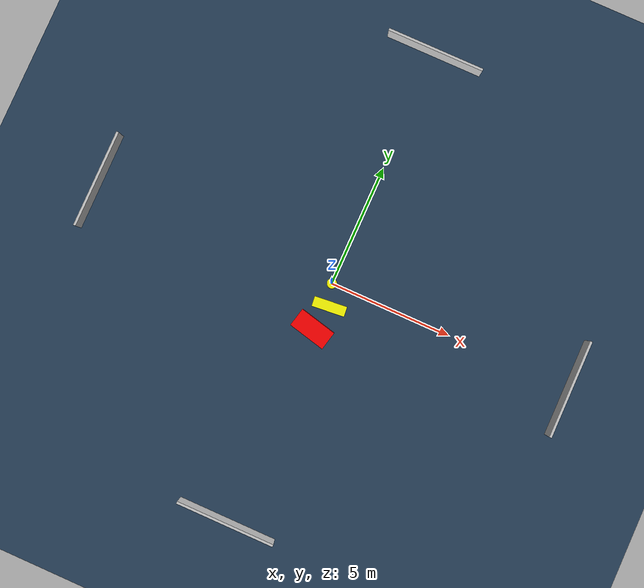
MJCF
<?xml version="1.0" ?>
<mujoco model="generated_environment">
  <option timestep="0.01" integrator="RK4" cone="elliptic"/>
  <default>
    <geom density="1"/>
  </default>
  <asset>
    <texture builtin="gradient" height="3072" name="skybox" rgb1="0.3 0.5 0.7" rgb2="0 0 0" type="skybox" width="512"/>
    <texture builtin="checker" height="300" name="groundplane" rgb1="0.2 0.3 0.4" rgb2="0.1 0.2 0.3" type="2d" width="300"/>
    <material name="groundplane" reflectance="0.2" texrepeat="5 5" texture="groundplane"/>
  </asset>
  <worldbody>
    <light dir="0 0 -1" directional="true" pos="0 0 1.5"/>
    <geom condim="3" friction="0.5 0.005 0.001" material="groundplane" name="floor" pos="0 0 0" size="0 0 0.05" type="plane"/>
    <body name="walls">
      <geom name="wall_1" condim="4" pos="-10.0 0.0 0.3" rgba="0.800000011920929 0.800000011920929 0.800000011920929 1.0" size="0.05 2.0 0.3" type="box"/>
      <geom name="wall_2" condim="4" pos="10.0 0.0 0.3" rgba="0.800000011920929 0.800000011920929 0.800000011920929 1.0" size="0.05 2.0 0.3" type="box"/>
      <geom name="wall_3" condim="4" pos="0.0 -10.0 0.3" rgba="0.800000011920929 0.800000011920929 0.800000011920929 1.0" size="2.0 0.05 0.3" type="box"/>
      <geom name="wall_4" condim="4" pos="0.0 10.0 0.3" rgba="0.800000011920929 0.800000011920929 0.800000011920929 1.0" size="2.0 0.05 0.3" type="box"/>
    </body>
    <body name="robot">
      <joint name="joint_x" type="slide" pos="0 0 0" axis="1 0 0"/>
      <joint name="joint_y" type="slide" pos="0 0 0" axis="0 1 0"/>
      <geom name="robot" type="cylinder" pos="0.0 0.0 0.2" size="0.2 0.2 0.0" mass="5.0" friction="1.0 0.005 0.0001" condim="4" rgba="1.0 1.0 0.0 1.0"/>
    </body>
    <body name="obstacle_1_movable">
      <geom name="obstacle_1_movable" condim="4" pos="0.2733047730778751 -0.8574211657247333 0.3" euler="0 0 95.19604279645048" friction="0.0 0.005 0.001" rgba="1.0 1.0 0.0 1.0" size="0.20304910363079767 0.6590433556687227 0.3" type="box" mass="0.1"/>
      <joint type="free"/>
    </body>
    <body name="obstacle_2_static">
      <geom name="obstacle_2_static" condim="4" pos="0.02543292327667424 -1.9162285379930368 0.3" euler="0 0 346.66533294532655" friction="0.0 0.005 0.001" rgba="1.0 0.0 0.0 1.0" size="0.7657883855991361 0.38247273105915575 0.3" type="box"/>
    </body>
  </worldbody>
  <actuator>
    <motor name="actuator_x" joint="joint_x" gear="1" ctrlrange="-1 1"/>
    <motor name="actuator_y" joint="joint_y" gear="1" ctrlrange="-1 1"/>
  </actuator>
</mujoco>
